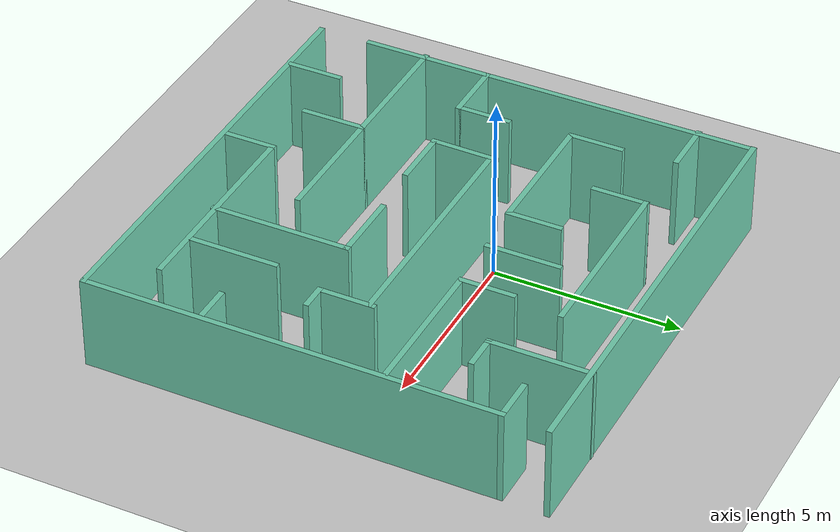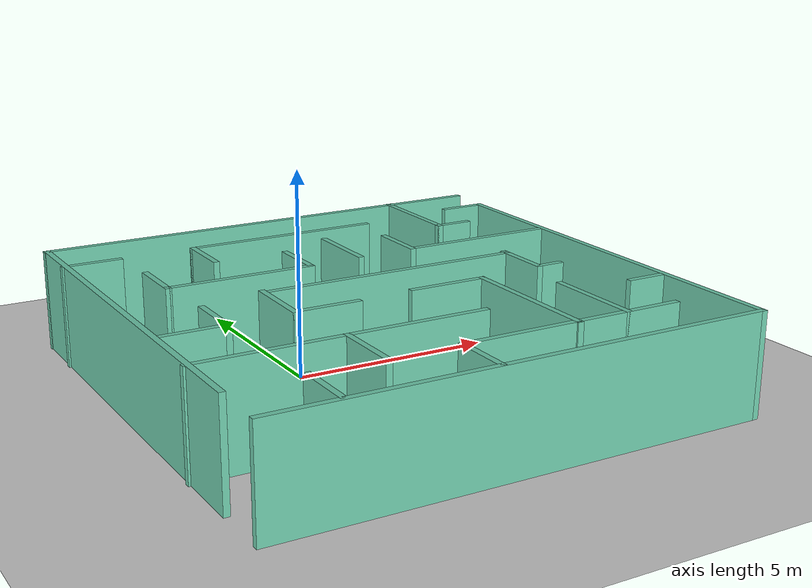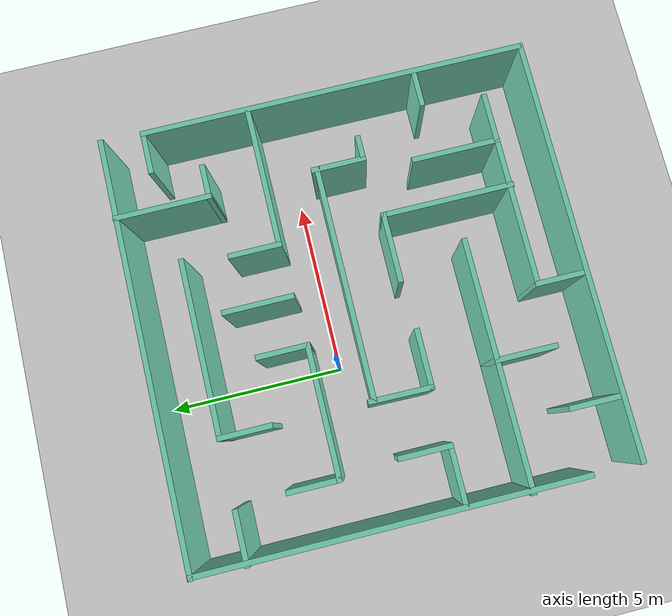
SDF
<sdf version="1.6">
 <world name="default">
  <scene><ambient>0.4 0.4 0.4 1</ambient><background>0.7 0.7 0.7 1</background><shadows>1</shadows></scene>
  <light name="sun" type="directional">
   <pose>0 0 10 0 -0 0</pose>
   <diffuse>0.8 0.8 0.8 1</diffuse>
   <specular>0.2 0.2 0.2 1</specular>
   <attenuation>
    <range>1000</range>
    <constant>0.9</constant>
    <linear>0.01</linear>
    <quadratic>0.001</quadratic>
   </attenuation>
   <direction>-0.5 0.1 -0.9</direction>
  </light>
  <model name="ground_plane">
   <static>1</static>
   <link name="link">
    <collision name="collision">
     <geometry><plane><normal>0 0 1</normal><size>100 100</size></plane></geometry>
     <surface>
      <contact><collide_bitmask>65535</collide_bitmask></contact>
      <friction><ode><mu>100</mu><mu2>50</mu2></ode></friction>
     </surface>
    </collision>
    <visual name="visual">
     <cast_shadows>0</cast_shadows>
     <geometry><plane><normal>0 0 1</normal><size>100 100</size></plane></geometry>
     <material>
      <script><uri>file://media/materials/scripts/gazebo.material</uri><name>Gazebo/Grey</name></script>
     </material>
    </visual>
   </link>
  </model>
  <physics name="default_physics" default="0" type="ode">
   <real_time_update_rate>1000</real_time_update_rate>
   <max_step_size>0.001</max_step_size>
   <real_time_factor>1</real_time_factor>
   <ode>
    <solver>
     <type>quick</type>
     <iters>150</iters>
     <precon_iters>0</precon_iters>
     <sor>1.4</sor>
     <use_dynamic_moi_rescaling>1</use_dynamic_moi_rescaling>
    </solver>
    <constraints>
     <cfm>1e-05</cfm>
     <erp>0.2</erp>
     <contact_max_correcting_vel>2000</contact_max_correcting_vel>
     <contact_surface_layer>0.01</contact_surface_layer>
    </constraints>
   </ode>
  </physics>
  <gravity>0 0 -9.8</gravity>
  <magnetic_field>6e-06 2.3e-05 -4.2e-05</magnetic_field>
  <atmosphere type="adiabatic"/>
  <audio><device>default</device></audio>
  <spherical_coordinates>
   <surface_model>EARTH_WGS84</surface_model>
   <latitude_deg>0</latitude_deg>
   <longitude_deg>0</longitude_deg>
   <elevation>0</elevation>
   <heading_deg>0</heading_deg>
  </spherical_coordinates>
  <model name="maze_test">
   <pose>1.51513 -1.06699 0 0 -0 0</pose>
   <link name="Wall_0">
    <collision name="Wall_0_Collision">
     <geometry><box><size>12 0.15 2.5</size></box></geometry>
     <pose>0 0 1.25 0 -0 0</pose>
    </collision>
    <visual name="Wall_0_Visual">
     <pose>0 0 1.25 0 -0 0</pose>
     <geometry><box><size>12 0.15 2.5</size></box></geometry>
     <material>
      <script><uri>file://media/materials/scripts/gazebo.material</uri><name>Gazebo/Grey</name></script>
      <ambient>0.435294 0.796078 0.67451 1</ambient>
     </material>
     <meta><layer>0</layer></meta>
    </visual>
    <pose>0.027876 -6.02551 0 0 -0 0</pose>
   </link>
   <link name="Wall_10">
    <collision name="Wall_10_Collision">
     <geometry><box><size>7 0.15 2.5</size></box></geometry>
     <pose>0 0 1.25 0 -0 0</pose>
    </collision>
    <visual name="Wall_10_Visual">
     <pose>0 0 1.25 0 -0 0</pose>
     <geometry><box><size>7 0.15 2.5</size></box></geometry>
     <material>
      <script><uri>file://media/materials/scripts/gazebo.material</uri><name>Gazebo/Grey</name></script>
      <ambient>0.435294 0.796078 0.67451 1</ambient>
     </material>
     <meta><layer>0</layer></meta>
    </visual>
    <pose>-2.55306 -3.04683 0 0 -0 3.14159</pose>
   </link>
   <link name="Wall_12">
    <collision name="Wall_12_Collision">
     <geometry><box><size>1.5 0.15 2.5</size></box></geometry>
     <pose>0 0 1.25 0 -0 0</pose>
    </collision>
    <visual name="Wall_12_Visual">
     <pose>0 0 1.25 0 -0 0</pose>
     <geometry><box><size>1.5 0.15 2.5</size></box></geometry>
     <material>
      <script><uri>file://media/materials/scripts/gazebo.material</uri><name>Gazebo/Grey</name></script>
      <ambient>0.435294 0.796078 0.67451 1</ambient>
     </material>
     <meta><layer>0</layer></meta>
    </visual>
    <pose>-4.14486 -5.2779 0 0 -0 1.5708</pose>
   </link>
   <link name="Wall_14">
    <collision name="Wall_14_Collision">
     <geometry><box><size>1.75 0.15 2.5</size></box></geometry>
     <pose>0 0 1.25 0 -0 0</pose>
    </collision>
    <visual name="Wall_14_Visual">
     <pose>0 0 1.25 0 -0 0</pose>
     <geometry><box><size>1.75 0.15 2.5</size></box></geometry>
     <material>
      <script><uri>file://media/materials/scripts/gazebo.material</uri><name>Gazebo/Grey</name></script>
      <ambient>0.435294 0.796078 0.67451 1</ambient>
     </material>
     <meta><layer>0</layer></meta>
    </visual>
    <pose>-2.46239 -3.84683 0 0 -0 -1.5708</pose>
   </link>
   <link name="Wall_16">
    <collision name="Wall_16_Collision">
     <geometry><box><size>1.75 0.15 2.5</size></box></geometry>
     <pose>0 0 1.25 0 -0 0</pose>
    </collision>
    <visual name="Wall_16_Visual">
     <pose>0 0 1.25 0 -0 0</pose>
     <geometry><box><size>1.75 0.15 2.5</size></box></geometry>
     <material>
      <script><uri>file://media/materials/scripts/gazebo.material</uri><name>Gazebo/Grey</name></script>
      <ambient>0.435294 0.796078 0.67451 1</ambient>
     </material>
     <meta><layer>0</layer></meta>
    </visual>
    <pose>-5.11909 -1.27259 0 0 -0 0</pose>
   </link>
   <link name="Wall_17">
    <collision name="Wall_17_Collision">
     <geometry><box><size>1.5 0.15 2.5</size></box></geometry>
     <pose>0 0 1.25 0 -0 0</pose>
    </collision>
    <visual name="Wall_17_Visual">
     <pose>0 0 1.25 0 -0 0</pose>
     <geometry><box><size>1.5 0.15 2.5</size></box></geometry>
     <material>
      <script><uri>file://media/materials/scripts/gazebo.material</uri><name>Gazebo/Grey</name></script>
      <ambient>0.435294 0.796078 0.67451 1</ambient>
     </material>
     <meta><layer>0</layer></meta>
    </visual>
    <pose>-4.31909 -0.597593 0 0 -0 1.5708</pose>
   </link>
   <link name="Wall_19">
    <collision name="Wall_19_Collision">
     <geometry><box><size>1.66191 0.15 2.5</size></box></geometry>
     <pose>0 0 1.25 0 -0 0</pose>
    </collision>
    <visual name="Wall_19_Visual">
     <pose>0 0 1.25 0 -0 0</pose>
     <geometry><box><size>1.66191 0.15 2.5</size></box></geometry>
     <material>
      <script><uri>file://media/materials/scripts/gazebo.material</uri><name>Gazebo/Grey</name></script>
      <ambient>0.435294 0.796078 0.67451 1</ambient>
     </material>
     <meta><layer>0</layer></meta>
    </visual>
    <pose>-1.96012 -1.18082 0 0 -0 0</pose>
   </link>
   <link name="Wall_2">
    <collision name="Wall_2_Collision">
     <geometry><box><size>12.0704 0.15 2.5</size></box></geometry>
     <pose>0 0 1.25 0 -0 0</pose>
    </collision>
    <visual name="Wall_2_Visual">
     <pose>0 0 1.25 0 -0 0</pose>
     <geometry><box><size>12.0704 0.15 2.5</size></box></geometry>
     <material>
      <script><uri>file://media/materials/scripts/gazebo.material</uri><name>Gazebo/Grey</name></script>
      <ambient>0.435294 0.796078 0.67451 1</ambient>
     </material>
     <meta><layer>0</layer></meta>
    </visual>
    <pose>0.017809 6.00354 0 0 -0 -3.14065</pose>
   </link>
   <link name="Wall_21">
    <collision name="Wall_21_Collision">
     <geometry><box><size>1.80086 0.15 2.5</size></box></geometry>
     <pose>0 0 1.25 0 -0 0</pose>
    </collision>
    <visual name="Wall_21_Visual">
     <pose>0 0 1.25 0 -0 0</pose>
     <geometry><box><size>1.80086 0.15 2.5</size></box></geometry>
     <material>
      <script><uri>file://media/materials/scripts/gazebo.material</uri><name>Gazebo/Grey</name></script>
      <ambient>0.435294 0.796078 0.67451 1</ambient>
     </material>
     <meta><layer>0</layer></meta>
    </visual>
    <pose>-2.72764 -0.355473 0 0 -0 1.55679</pose>
   </link>
   <link name="Wall_22">
    <collision name="Wall_22_Collision">
     <geometry><box><size>6.66191 0.15 2.5</size></box></geometry>
     <pose>0 0 1.25 0 -0 0</pose>
    </collision>
    <visual name="Wall_22_Visual">
     <pose>0 0 1.25 0 -0 0</pose>
     <geometry><box><size>6.66191 0.15 2.5</size></box></geometry>
     <material>
      <script><uri>file://media/materials/scripts/gazebo.material</uri><name>Gazebo/Grey</name></script>
      <ambient>0.435294 0.796078 0.67451 1</ambient>
     </material>
     <meta><layer>0</layer></meta>
    </visual>
    <pose>0.539879 0.377354 0 0 -0 0</pose>
   </link>
   <link name="Wall_23">
    <collision name="Wall_23_Collision">
     <geometry><box><size>1.5507 0.15 2.5</size></box></geometry>
     <pose>0 0 1.25 0 -0 0</pose>
    </collision>
    <visual name="Wall_23_Visual">
     <pose>0 0 1.25 0 -0 0</pose>
     <geometry><box><size>1.5507 0.15 2.5</size></box></geometry>
     <material>
      <script><uri>file://media/materials/scripts/gazebo.material</uri><name>Gazebo/Grey</name></script>
      <ambient>0.435294 0.796078 0.67451 1</ambient>
     </material>
     <meta><layer>0</layer></meta>
    </visual>
    <pose>3.79584 -0.230473 0 0 -0 -1.5708</pose>
   </link>
   <link name="Wall_24">
    <collision name="Wall_24_Collision">
     <geometry><box><size>0.75 0.15 2.5</size></box></geometry>
     <pose>0 0 1.25 0 -0 0</pose>
    </collision>
    <visual name="Wall_24_Visual">
     <pose>0 0 1.25 0 -0 0</pose>
     <geometry><box><size>0.75 0.15 2.5</size></box></geometry>
     <material>
      <script><uri>file://media/materials/scripts/gazebo.material</uri><name>Gazebo/Grey</name></script>
      <ambient>0.435294 0.796078 0.67451 1</ambient>
     </material>
     <meta><layer>0</layer></meta>
    </visual>
    <pose>4.09584 -0.930822 0 0 -0 0</pose>
   </link>
   <link name="Wall_26">
    <collision name="Wall_26_Collision">
     <geometry><box><size>2 0.15 2.5</size></box></geometry>
     <pose>0 0 1.25 0 -0 0</pose>
    </collision>
    <visual name="Wall_26_Visual">
     <pose>0 0 1.25 0 -0 0</pose>
     <geometry><box><size>2 0.15 2.5</size></box></geometry>
     <material>
      <script><uri>file://media/materials/scripts/gazebo.material</uri><name>Gazebo/Grey</name></script>
      <ambient>0.435294 0.796078 0.67451 1</ambient>
     </material>
     <meta><layer>0</layer></meta>
    </visual>
    <pose>1.17639 -1.0901 0 0 -0 0</pose>
   </link>
   <link name="Wall_27">
    <collision name="Wall_27_Collision">
     <geometry><box><size>3.75 0.15 2.5</size></box></geometry>
     <pose>0 0 1.25 0 -0 0</pose>
    </collision>
    <visual name="Wall_27_Visual">
     <pose>0 0 1.25 0 -0 0</pose>
     <geometry><box><size>3.75 0.15 2.5</size></box></geometry>
     <material>
      <script><uri>file://media/materials/scripts/gazebo.material</uri><name>Gazebo/Grey</name></script>
      <ambient>0.435294 0.796078 0.67451 1</ambient>
     </material>
     <meta><layer>0</layer></meta>
    </visual>
    <pose>2.10139 -2.8901 0 0 -0 -1.5708</pose>
   </link>
   <link name="Wall_29">
    <collision name="Wall_29_Collision">
     <geometry><box><size>1 0.15 2.5</size></box></geometry>
     <pose>0 0 1.25 0 -0 0</pose>
    </collision>
    <visual name="Wall_29_Visual">
     <pose>0 0 1.25 0 -0 0</pose>
     <geometry><box><size>1 0.15 2.5</size></box></geometry>
     <material>
      <script><uri>file://media/materials/scripts/gazebo.material</uri><name>Gazebo/Grey</name></script>
      <ambient>0.435294 0.796078 0.67451 1</ambient>
     </material>
     <meta><layer>0</layer></meta>
    </visual>
    <pose>5.3882 -2.90683 0 0 -0 0</pose>
   </link>
   <link name="Wall_31">
    <collision name="Wall_31_Collision">
     <geometry><box><size>5.5 0.15 2.5</size></box></geometry>
     <pose>0 0 1.25 0 -0 0</pose>
    </collision>
    <visual name="Wall_31_Visual">
     <pose>0 0 1.25 0 -0 0</pose>
     <geometry><box><size>5.5 0.15 2.5</size></box></geometry>
     <material>
      <script><uri>file://media/materials/scripts/gazebo.material</uri><name>Gazebo/Grey</name></script>
      <ambient>0.435294 0.796078 0.67451 1</ambient>
     </material>
     <meta><layer>0</layer></meta>
    </visual>
    <pose>2.06022 -4.65048 0 0 -0 0</pose>
   </link>
   <link name="Wall_33">
    <collision name="Wall_33_Collision">
     <geometry><box><size>2.5 0.15 2.5</size></box></geometry>
     <pose>0 0 1.25 0 -0 0</pose>
    </collision>
    <visual name="Wall_33_Visual">
     <pose>0 0 1.25 0 -0 0</pose>
     <geometry><box><size>2.5 0.15 2.5</size></box></geometry>
     <material>
      <script><uri>file://media/materials/scripts/gazebo.material</uri><name>Gazebo/Grey</name></script>
      <ambient>0.435294 0.796078 0.67451 1</ambient>
     </material>
     <meta><layer>0</layer></meta>
    </visual>
    <pose>3.42313 -3.47548 0 0 -0 1.5708</pose>
   </link>
   <link name="Wall_35">
    <collision name="Wall_35_Collision">
     <geometry><box><size>1.5 0.15 2.5</size></box></geometry>
     <pose>0 0 1.25 0 -0 0</pose>
    </collision>
    <visual name="Wall_35_Visual">
     <pose>0 0 1.25 0 -0 0</pose>
     <geometry><box><size>1.5 0.15 2.5</size></box></geometry>
     <material>
      <script><uri>file://media/materials/scripts/gazebo.material</uri><name>Gazebo/Grey</name></script>
      <ambient>0.435294 0.796078 0.67451 1</ambient>
     </material>
     <meta><layer>0</layer></meta>
    </visual>
    <pose>-0.737138 -5.32548 0 0 -0 -1.5708</pose>
   </link>
   <link name="Wall_37">
    <collision name="Wall_37_Collision">
     <geometry><box><size>1.5 0.15 2.5</size></box></geometry>
     <pose>0 0 1.25 0 -0 0</pose>
    </collision>
    <visual name="Wall_37_Visual">
     <pose>0 0 1.25 0 -0 0</pose>
     <geometry><box><size>1.5 0.15 2.5</size></box></geometry>
     <material>
      <script><uri>file://media/materials/scripts/gazebo.material</uri><name>Gazebo/Grey</name></script>
      <ambient>0.435294 0.796078 0.67451 1</ambient>
     </material>
     <meta><layer>0</layer></meta>
    </visual>
    <pose>-4.46915 2.41385 0 0 -0 -1.5708</pose>
   </link>
   <link name="Wall_38">
    <collision name="Wall_38_Collision">
     <geometry><box><size>3.75 0.15 2.5</size></box></geometry>
     <pose>0 0 1.25 0 -0 0</pose>
    </collision>
    <visual name="Wall_38_Visual">
     <pose>0 0 1.25 0 -0 0</pose>
     <geometry><box><size>3.75 0.15 2.5</size></box></geometry>
     <material>
      <script><uri>file://media/materials/scripts/gazebo.material</uri><name>Gazebo/Grey</name></script>
      <ambient>0.435294 0.796078 0.67451 1</ambient>
     </material>
     <meta><layer>0</layer></meta>
    </visual>
    <pose>-2.66915 1.73885 0 0 -0 0</pose>
   </link>
   <link name="Wall_39">
    <collision name="Wall_39_Collision">
     <geometry><box><size>1.5 0.15 2.5</size></box></geometry>
     <pose>0 0 1.25 0 -0 0</pose>
    </collision>
    <visual name="Wall_39_Visual">
     <pose>0 0 1.25 0 -0 0</pose>
     <geometry><box><size>1.5 0.15 2.5</size></box></geometry>
     <material>
      <script><uri>file://media/materials/scripts/gazebo.material</uri><name>Gazebo/Grey</name></script>
      <ambient>0.435294 0.796078 0.67451 1</ambient>
     </material>
     <meta><layer>0</layer></meta>
    </visual>
    <pose>-0.869146 2.41385 0 0 -0 1.5708</pose>
   </link>
   <link name="Wall_4">
    <collision name="Wall_4_Collision">
     <geometry><box><size>10.75 0.15 2.5</size></box></geometry>
     <pose>0 0 1.25 0 -0 0</pose>
    </collision>
    <visual name="Wall_4_Visual">
     <pose>0 0 1.25 0 -0 0</pose>
     <geometry><box><size>10.75 0.15 2.5</size></box></geometry>
     <material>
      <script><uri>file://media/materials/scripts/gazebo.material</uri><name>Gazebo/Grey</name></script>
      <ambient>0.435294 0.796078 0.67451 1</ambient>
     </material>
     <meta><layer>0</layer></meta>
    </visual>
    <pose>-5.9236 0.685397 0 0 -0 1.5708</pose>
   </link>
   <link name="Wall_41">
    <collision name="Wall_41_Collision">
     <geometry><box><size>1.5 0.15 2.5</size></box></geometry>
     <pose>0 0 1.25 0 -0 0</pose>
    </collision>
    <visual name="Wall_41_Visual">
     <pose>0 0 1.25 0 -0 0</pose>
     <geometry><box><size>1.5 0.15 2.5</size></box></geometry>
     <material>
      <script><uri>file://media/materials/scripts/gazebo.material</uri><name>Gazebo/Grey</name></script>
      <ambient>0.435294 0.796078 0.67451 1</ambient>
     </material>
     <meta><layer>0</layer></meta>
    </visual>
    <pose>-5.29307 4.52659 0 0 -0 0</pose>
   </link>
   <link name="Wall_43">
    <collision name="Wall_43_Collision">
     <geometry><box><size>1.5 0.15 2.5</size></box></geometry>
     <pose>0 0 1.25 0 -0 0</pose>
    </collision>
    <visual name="Wall_43_Visual">
     <pose>0 0 1.25 0 -0 0</pose>
     <geometry><box><size>1.5 0.15 2.5</size></box></geometry>
     <material>
      <script><uri>file://media/materials/scripts/gazebo.material</uri><name>Gazebo/Grey</name></script>
      <ambient>0.435294 0.796078 0.67451 1</ambient>
     </material>
     <meta><layer>0</layer></meta>
    </visual>
    <pose>-2.69491 3.85562 0 0 -0 1.5708</pose>
   </link>
   <link name="Wall_44">
    <collision name="Wall_44_Collision">
     <geometry><box><size>5 0.15 2.5</size></box></geometry>
     <pose>0 0 1.25 0 -0 0</pose>
    </collision>
    <visual name="Wall_44_Visual">
     <pose>0 0 1.25 0 -0 0</pose>
     <geometry><box><size>5 0.15 2.5</size></box></geometry>
     <material>
      <script><uri>file://media/materials/scripts/gazebo.material</uri><name>Gazebo/Grey</name></script>
      <ambient>0.435294 0.796078 0.67451 1</ambient>
     </material>
     <meta><layer>0</layer></meta>
    </visual>
    <pose>-0.269913 4.53062 0 0 -0 0</pose>
   </link>
   <link name="Wall_46">
    <collision name="Wall_46_Collision">
     <geometry><box><size>2.75 0.15 2.5</size></box></geometry>
     <pose>0 0 1.25 0 -0 0</pose>
    </collision>
    <visual name="Wall_46_Visual">
     <pose>0 0 1.25 0 -0 0</pose>
     <geometry><box><size>2.75 0.15 2.5</size></box></geometry>
     <material>
      <script><uri>file://media/materials/scripts/gazebo.material</uri><name>Gazebo/Grey</name></script>
      <ambient>0.435294 0.796078 0.67451 1</ambient>
     </material>
     <meta><layer>0</layer></meta>
    </visual>
    <pose>3.75963 4.72551 0 0 -0 -1.5708</pose>
   </link>
   <link name="Wall_47">
    <collision name="Wall_47_Collision">
     <geometry><box><size>1 0.15 2.5</size></box></geometry>
     <pose>0 0 1.25 0 -0 0</pose>
    </collision>
    <visual name="Wall_47_Visual">
     <pose>0 0 1.25 0 -0 0</pose>
     <geometry><box><size>1 0.15 2.5</size></box></geometry>
     <material>
      <script><uri>file://media/materials/scripts/gazebo.material</uri><name>Gazebo/Grey</name></script>
      <ambient>0.435294 0.796078 0.67451 1</ambient>
     </material>
     <meta><layer>0</layer></meta>
    </visual>
    <pose>4.18462 3.42551 0 0 -0 0</pose>
   </link>
   <link name="Wall_49">
    <collision name="Wall_49_Collision">
     <geometry><box><size>1.25 0.15 2.5</size></box></geometry>
     <pose>0 0 1.25 0 -0 0</pose>
    </collision>
    <visual name="Wall_49_Visual">
     <pose>0 0 1.25 0 -0 0</pose>
     <geometry><box><size>1.25 0.15 2.5</size></box></geometry>
     <material>
      <script><uri>file://media/materials/scripts/gazebo.material</uri><name>Gazebo/Grey</name></script>
      <ambient>0.435294 0.796078 0.67451 1</ambient>
     </material>
     <meta><layer>0</layer></meta>
    </visual>
    <pose>5.40288 4.82449 0 0 -0 3.14159</pose>
   </link>
   <link name="Wall_51">
    <collision name="Wall_51_Collision">
     <geometry><box><size>2 0.15 2.5</size></box></geometry>
     <pose>0 0 1.25 0 -0 0</pose>
    </collision>
    <visual name="Wall_51_Visual">
     <pose>0 0 1.25 0 -0 0</pose>
     <geometry><box><size>2 0.15 2.5</size></box></geometry>
     <material>
      <script><uri>file://media/materials/scripts/gazebo.material</uri><name>Gazebo/Grey</name></script>
      <ambient>0.435294 0.796078 0.67451 1</ambient>
     </material>
     <meta><layer>0</layer></meta>
    </visual>
    <pose>0.517061 2.77566 0 0 -0 -1.5708</pose>
   </link>
   <link name="Wall_53">
    <collision name="Wall_53_Collision">
     <geometry><box><size>1.5 0.15 2.5</size></box></geometry>
     <pose>0 0 1.25 0 -0 0</pose>
    </collision>
    <visual name="Wall_53_Visual">
     <pose>0 0 1.25 0 -0 0</pose>
     <geometry><box><size>1.5 0.15 2.5</size></box></geometry>
     <material>
      <script><uri>file://media/materials/scripts/gazebo.material</uri><name>Gazebo/Grey</name></script>
      <ambient>0.435294 0.796078 0.67451 1</ambient>
     </material>
     <meta><layer>0</layer></meta>
    </visual>
    <pose>1.98539 2.53621 0 0 -0 -1.5708</pose>
   </link>
   <link name="Wall_54">
    <collision name="Wall_54_Collision">
     <geometry><box><size>4 0.15 2.5</size></box></geometry>
     <pose>0 0 1.25 0 -0 0</pose>
    </collision>
    <visual name="Wall_54_Visual">
     <pose>0 0 1.25 0 -0 0</pose>
     <geometry><box><size>4 0.15 2.5</size></box></geometry>
     <material>
      <script><uri>file://media/materials/scripts/gazebo.material</uri><name>Gazebo/Grey</name></script>
      <ambient>0.435294 0.796078 0.67451 1</ambient>
     </material>
     <meta><layer>0</layer></meta>
    </visual>
    <pose>3.91039 1.86121 0 0 -0 0</pose>
   </link>
   <link name="Wall_8">
    <collision name="Wall_8_Collision">
     <geometry><box><size>11 0.15 2.5</size></box></geometry>
     <pose>0 0 1.25 0 -0 0</pose>
    </collision>
    <visual name="Wall_8_Visual">
     <pose>0 0 1.25 0 -0 0</pose>
     <geometry><box><size>11 0.15 2.5</size></box></geometry>
     <material>
      <script><uri>file://media/materials/scripts/gazebo.material</uri><name>Gazebo/Grey</name></script>
      <ambient>0.435294 0.796078 0.67451 1</ambient>
     </material>
     <meta><layer>0</layer></meta>
    </visual>
    <pose>5.95288 -0.600513 0 0 -0 1.5708</pose>
   </link>
   <static>1</static>
  </model>
 </world>
</sdf>
